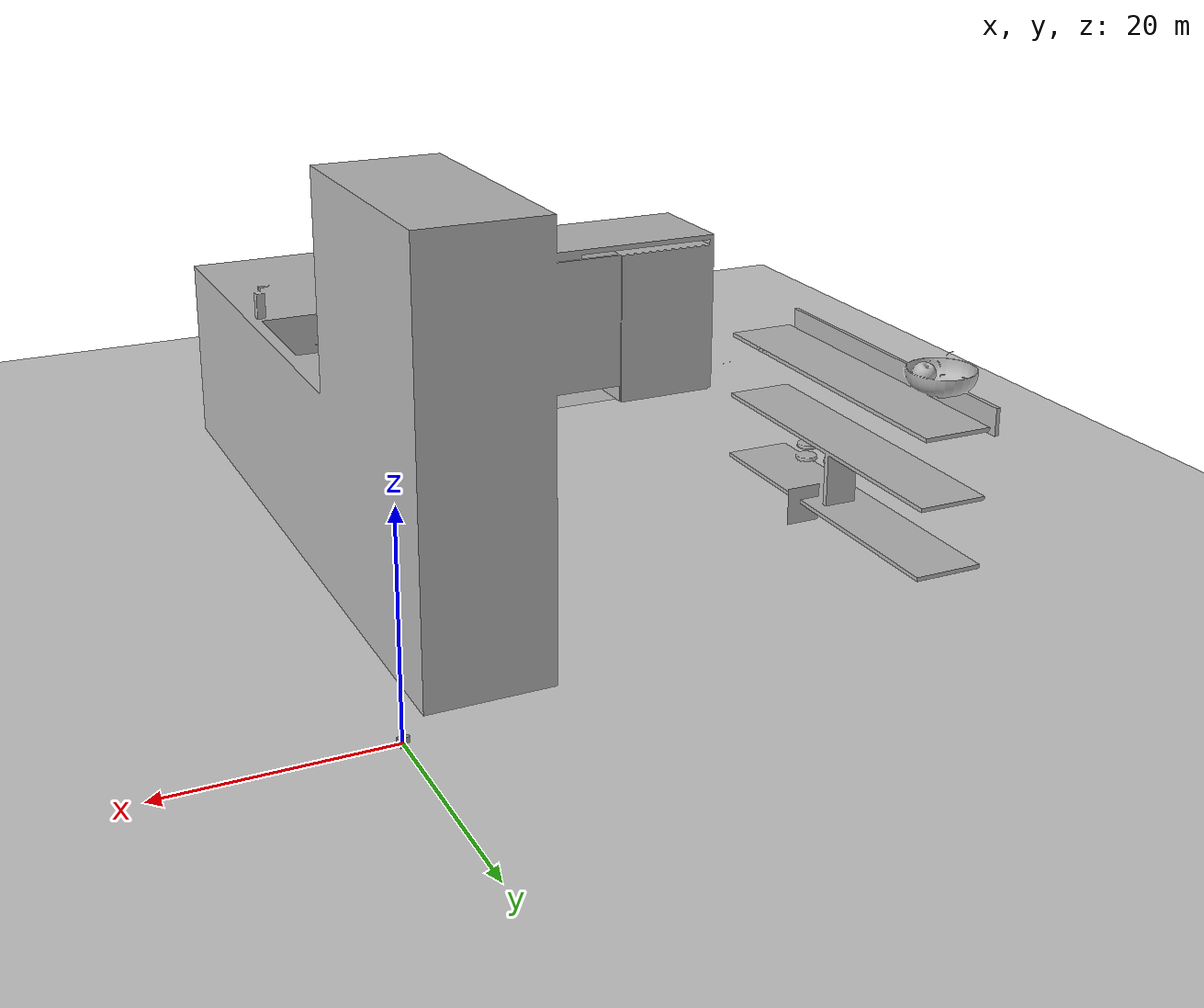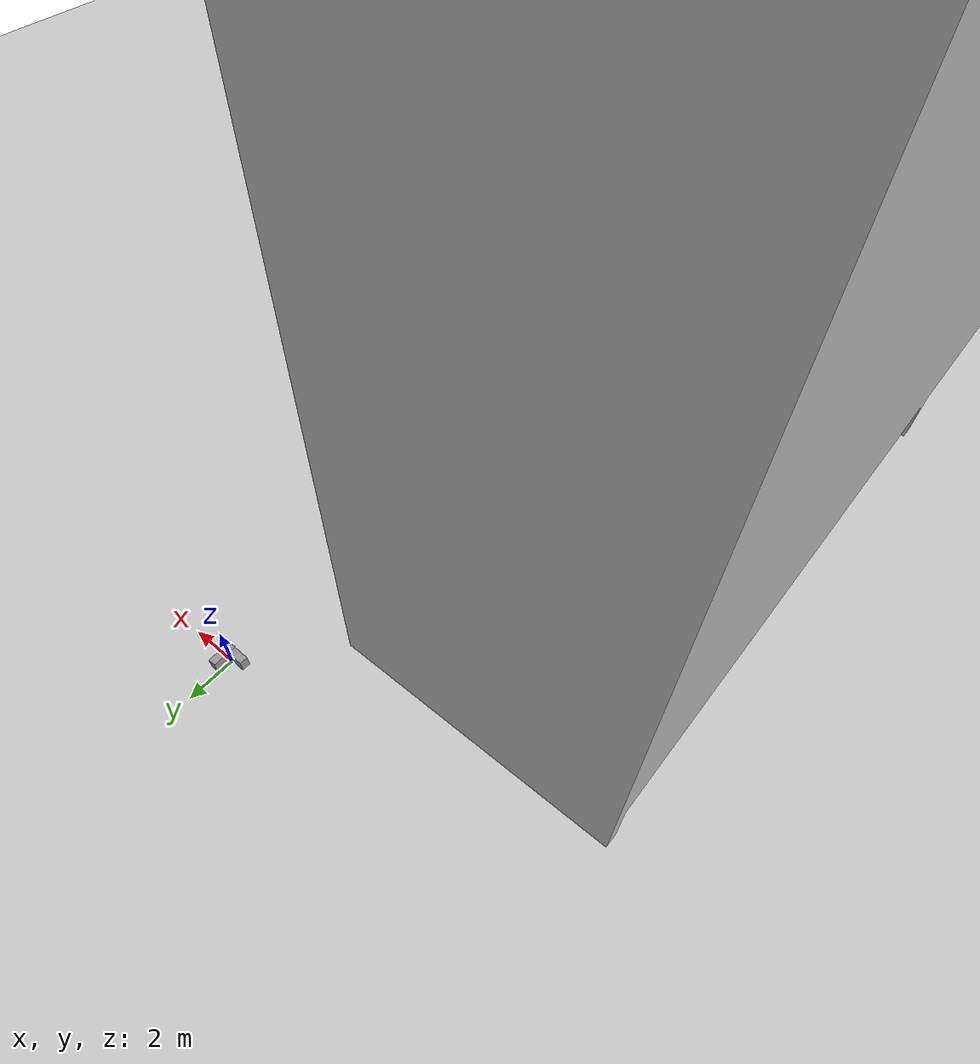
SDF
<sdf version="1.7">
 <world name="default">
  <light name="sun" type="directional">
   <pose>0 0 10 0 -0 0</pose>
   <diffuse>0.8 0.8 0.8 1</diffuse>
   <specular>0.2 0.2 0.2 1</specular>
   <attenuation>
    <range>1000</range>
    <constant>0.9</constant>
    <linear>0.01</linear>
    <quadratic>0.001</quadratic>
   </attenuation>
   <direction>-0.5 0.1 -0.9</direction>
   <spot><inner_angle>0</inner_angle><outer_angle>0</outer_angle><falloff>0</falloff></spot>
  </light>
  <model name="ground_plane">
   <static>1</static>
   <link name="link">
    <collision name="collision">
     <geometry><plane><normal>0 0 1</normal><size>100 100</size></plane></geometry>
     <surface>
      <contact><collide_bitmask>65535</collide_bitmask></contact>
      <friction><ode><mu>100</mu><mu2>50</mu2></ode></friction>
     </surface>
    </collision>
    <visual name="visual">
     <cast_shadows>0</cast_shadows>
     <geometry><plane><normal>0 0 1</normal><size>100 100</size></plane></geometry>
     <material>
      <script><uri>file://media/materials/scripts/gazebo.material</uri><name>Gazebo/Grey</name></script>
     </material>
    </visual>
   </link>
  </model>
  <gravity>0 0 -9.8</gravity>
  <magnetic_field>6e-06 2.3e-05 -4.2e-05</magnetic_field>
  <atmosphere type="adiabatic"/>
  <physics type="ode">
   <max_step_size>0.001</max_step_size>
   <real_time_factor>1</real_time_factor>
   <real_time_update_rate>1000</real_time_update_rate>
  </physics>
  <scene><ambient>0.4 0.4 0.4 1</ambient><background>0.7 0.7 0.7 1</background><shadows>1</shadows></scene>
  <spherical_coordinates>
   <surface_model>EARTH_WGS84</surface_model>
   <latitude_deg>0</latitude_deg>
   <longitude_deg>0</longitude_deg>
   <elevation>0</elevation>
   <heading_deg>0</heading_deg>
  </spherical_coordinates>
  <model name="kitchen">
   <static>1</static>
   <link name="kitchen">
    <visual name="visual">
     <geometry><mesh><uri>model://Kitchen/meshes/model.dae</uri><scale>0.5 0.5 0.5</scale></mesh></geometry>
    </visual>
   </link>
   <pose>0.467305 1.57082 0 0 0 -3.13984</pose>
  </model>
  <model name="kitchen_box">
   <link name="link_0">
    <inertial>
     <mass>0.141255</mass>
     <inertia>
      <ixx>0.0139102</ixx>
      <ixy>0</ixy>
      <ixz>0</ixz>
      <iyy>0.00343171</iyy>
      <iyz>0</iyz>
      <izz>0.0130641</izz>
     </inertia>
    </inertial>
    <pose>-4.0678 1.99751 0.272777 0 -0 0</pose>
    <visual name="visual">
     <geometry><box><size>0.331403 1 0.5</size></box></geometry>
     <material>
      <lighting>1</lighting>
      <script><uri>file://media/materials/scripts/gazebo.material</uri><name>Gazebo/Grey</name></script>
      <shader type="pixel"/>
     </material>
    </visual>
    <collision name="collision">
     <geometry><box><size>0.331403 1 0.5</size></box></geometry>
     <surface>
      <friction>
       <ode><mu>1</mu><mu2>1</mu2><fdir1>0 0 0</fdir1><slip1>0</slip1><slip2>0</slip2></ode>
       <torsional>
        <coefficient>1</coefficient>
        <patch_radius>0</patch_radius>
        <surface_radius>0</surface_radius>
        <use_patch_radius>1</use_patch_radius>
        <ode><slip>0</slip></ode>
       </torsional>
      </friction>
      <bounce><restitution_coefficient>0</restitution_coefficient><threshold>1e+06</threshold></bounce>
      <contact>
       <collide_without_contact>0</collide_without_contact>
       <collide_without_contact_bitmask>1</collide_without_contact_bitmask>
       <collide_bitmask>1</collide_bitmask>
       <ode>
        <soft_cfm>0</soft_cfm>
        <soft_erp>0.2</soft_erp>
        <kp>1e+13</kp>
        <kd>1</kd>
        <max_vel>0.01</max_vel>
        <min_depth>0</min_depth>
       </ode>
       <bullet>
        <split_impulse>1</split_impulse>
        <split_impulse_penetration_threshold>-0.01</split_impulse_penetration_threshold>
        <soft_cfm>0</soft_cfm>
        <soft_erp>0.2</soft_erp>
        <kp>1e+13</kp>
        <kd>1</kd>
       </bullet>
      </contact>
     </surface>
    </collision>
   </link>
   <link name="link_0_clone">
    <inertial>
     <mass>0.141255</mass>
     <inertia>
      <ixx>0.0139102</ixx>
      <ixy>0</ixy>
      <ixz>0</ixz>
      <iyy>0.00343171</iyy>
      <iyz>0</iyz>
      <izz>0.0130641</izz>
     </inertia>
    </inertial>
    <pose>-3.72184 2.32096 0.272777 0 0 -1.57838</pose>
    <visual name="visual">
     <geometry><box><size>0.331403 1 0.5</size></box></geometry>
     <material>
      <lighting>1</lighting>
      <script><uri>file://media/materials/scripts/gazebo.material</uri><name>Gazebo/Grey</name></script>
      <shader type="pixel"/>
     </material>
    </visual>
    <collision name="collision">
     <geometry><box><size>0.331403 1 0.5</size></box></geometry>
     <surface>
      <friction>
       <ode><mu>1</mu><mu2>1</mu2><fdir1>0 0 0</fdir1><slip1>0</slip1><slip2>0</slip2></ode>
       <torsional>
        <coefficient>1</coefficient>
        <patch_radius>0</patch_radius>
        <surface_radius>0</surface_radius>
        <use_patch_radius>1</use_patch_radius>
        <ode><slip>0</slip></ode>
       </torsional>
      </friction>
      <bounce><restitution_coefficient>0</restitution_coefficient><threshold>1e+06</threshold></bounce>
      <contact>
       <collide_without_contact>0</collide_without_contact>
       <collide_without_contact_bitmask>1</collide_without_contact_bitmask>
       <collide_bitmask>1</collide_bitmask>
       <ode>
        <soft_cfm>0</soft_cfm>
        <soft_erp>0.2</soft_erp>
        <kp>1e+13</kp>
        <kd>1</kd>
        <max_vel>0.01</max_vel>
        <min_depth>0</min_depth>
       </ode>
       <bullet>
        <split_impulse>1</split_impulse>
        <split_impulse_penetration_threshold>-0.01</split_impulse_penetration_threshold>
        <soft_cfm>0</soft_cfm>
        <soft_erp>0.2</soft_erp>
        <kp>1e+13</kp>
        <kd>1</kd>
       </bullet>
      </contact>
     </surface>
    </collision>
   </link>
   <static>0</static>
   <pose>-3.80118 2.15024 -0.022776 0 -0 3.13892</pose>
  </model>
 </world>
</sdf>
